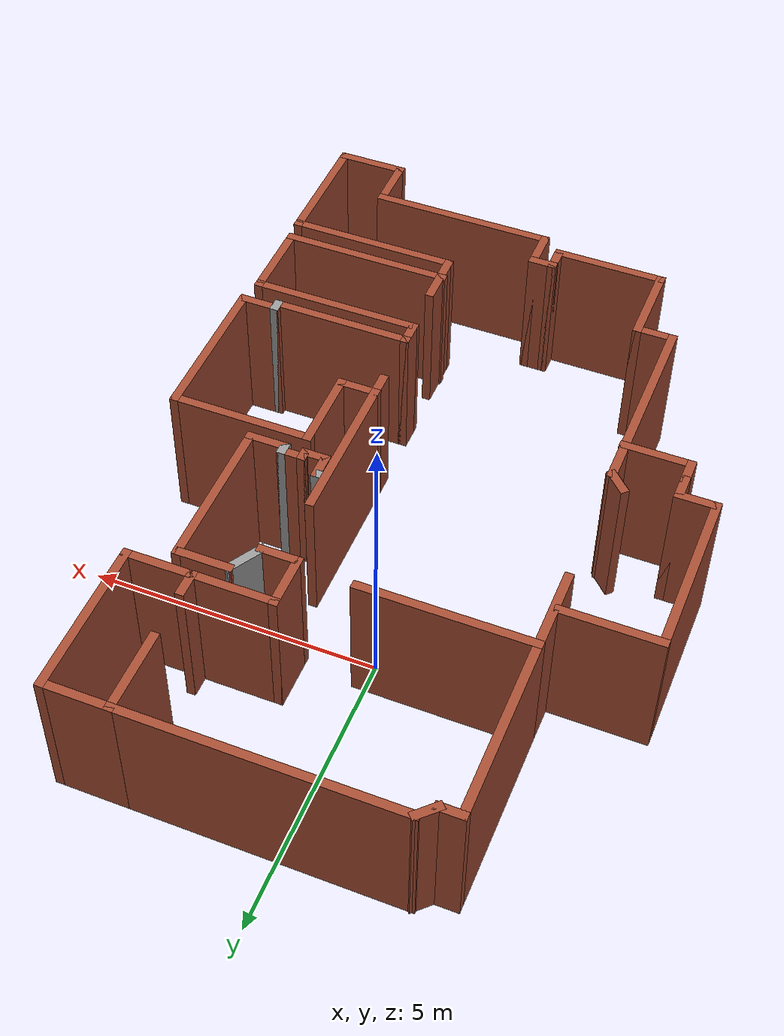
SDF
<?xml version='1.0'?>
<sdf version='1.6'>
  <model name='map_9'>
    <pose frame=''>0.012902 -2.60359 0 0 -0 0</pose>
    <link name='Wall_0'>
      <collision name='Wall_0_Collision'>
        <geometry>
          <box>
            <size>3.5 0.15 2.5</size>
          </box>
        </geometry>
        <pose frame=''>0 0 1.25 0 -0 0</pose>
      </collision>
      <visual name='Wall_0_Visual'>
        <pose frame=''>0 0 1.25 0 -0 0</pose>
        <geometry>
          <box>
            <size>3.5 0.15 2.5</size>
          </box>
        </geometry>
        <material>
          <script>
            <uri>file://media/materials/scripts/gazebo.material</uri>
            <name>Gazebo/Bricks</name>
          </script>
          <ambient>1 1 1 1</ambient>
        </material>
        <meta>
          <layer>0</layer>
        </meta>
      </visual>
      <pose frame=''>-2.69238 -2.26079 0 0 -0 -1.5708</pose>
    </link>
    <link name='Wall_1'>
      <collision name='Wall_1_Collision'>
        <geometry>
          <box>
            <size>0.75 0.15 2.5</size>
          </box>
        </geometry>
        <pose frame=''>0 0 1.25 0 -0 0</pose>
      </collision>
      <visual name='Wall_1_Visual'>
        <pose frame=''>0 0 1.25 0 -0 0</pose>
        <geometry>
          <box>
            <size>0.75 0.15 2.5</size>
          </box>
        </geometry>
        <material>
          <script>
            <uri>file://media/materials/scripts/gazebo.material</uri>
            <name>Gazebo/Bricks</name>
          </script>
          <ambient>1 1 1 1</ambient>
        </material>
        <meta>
          <layer>0</layer>
        </meta>
      </visual>
      <pose frame=''>-2.39238 -3.93579 0 0 -0 0</pose>
    </link>
    <link name='Wall_10'>
      <collision name='Wall_10_Collision'>
        <geometry>
          <box>
            <size>1.25 0.15 2.5</size>
          </box>
        </geometry>
        <pose frame=''>0 0 1.25 0 -0 0</pose>
      </collision>
      <visual name='Wall_10_Visual'>
        <pose frame=''>0 0 1.25 0 -0 0</pose>
        <geometry>
          <box>
            <size>1.25 0.15 2.5</size>
          </box>
        </geometry>
        <material>
          <script>
            <uri>file://media/materials/scripts/gazebo.material</uri>
            <name>Gazebo/Bricks</name>
          </script>
          <ambient>1 1 1 1</ambient>
        </material>
        <meta>
          <layer>0</layer>
        </meta>
      </visual>
      <pose frame=''>3.75761 -6.38579 0 0 -0 0</pose>
    </link>
    <link name='Wall_11'>
      <collision name='Wall_11_Collision'>
        <geometry>
          <box>
            <size>2.25 0.15 2.5</size>
          </box>
        </geometry>
        <pose frame=''>0 0 1.25 0 -0 0</pose>
      </collision>
      <visual name='Wall_11_Visual'>
        <pose frame=''>0 0 1.25 0 -0 0</pose>
        <geometry>
          <box>
            <size>2.25 0.15 2.5</size>
          </box>
        </geometry>
        <material>
          <script>
            <uri>file://media/materials/scripts/gazebo.material</uri>
            <name>Gazebo/Bricks</name>
          </script>
          <ambient>1 1 1 1</ambient>
        </material>
        <meta>
          <layer>0</layer>
        </meta>
      </visual>
      <pose frame=''>4.30762 -5.33579 0 0 -0 1.5708</pose>
    </link>
    <link name='Wall_12'>
      <collision name='Wall_12_Collision'>
        <geometry>
          <box>
            <size>3 0.15 2.5</size>
          </box>
        </geometry>
        <pose frame=''>0 0 1.25 0 -0 0</pose>
      </collision>
      <visual name='Wall_12_Visual'>
        <pose frame=''>0 0 1.25 0 -0 0</pose>
        <geometry>
          <box>
            <size>3 0.15 2.5</size>
          </box>
        </geometry>
        <material>
          <script>
            <uri>file://media/materials/scripts/gazebo.material</uri>
            <name>Gazebo/Bricks</name>
          </script>
          <ambient>1 1 1 1</ambient>
        </material>
        <meta>
          <layer>0</layer>
        </meta>
      </visual>
      <pose frame=''>2.88261 -4.28579 0 0 -0 3.14159</pose>
    </link>
    <link name='Wall_13'>
      <collision name='Wall_13_Collision'>
        <geometry>
          <box>
            <size>1 0.15 2.5</size>
          </box>
        </geometry>
        <pose frame=''>0 0 1.25 0 -0 0</pose>
      </collision>
      <visual name='Wall_13_Visual'>
        <pose frame=''>0 0 1.25 0 -0 0</pose>
        <geometry>
          <box>
            <size>1 0.15 2.5</size>
          </box>
        </geometry>
        <material>
          <script>
            <uri>file://media/materials/scripts/gazebo.material</uri>
            <name>Gazebo/Bricks</name>
          </script>
          <ambient>1 1 1 1</ambient>
        </material>
        <meta>
          <layer>0</layer>
        </meta>
      </visual>
      <pose frame=''>1.45762 -3.86079 0 0 -0 1.5708</pose>
    </link>
    <link name='Wall_15'>
      <collision name='Wall_15_Collision'>
        <geometry>
          <box>
            <size>3 0.15 2.5</size>
          </box>
        </geometry>
        <pose frame=''>0 0 1.25 0 -0 0</pose>
      </collision>
      <visual name='Wall_15_Visual'>
        <pose frame=''>0 0 1.25 0 -0 0</pose>
        <geometry>
          <box>
            <size>3 0.15 2.5</size>
          </box>
        </geometry>
        <material>
          <script>
            <uri>file://media/materials/scripts/gazebo.material</uri>
            <name>Gazebo/Bricks</name>
          </script>
          <ambient>1 1 1 1</ambient>
        </material>
        <meta>
          <layer>0</layer>
        </meta>
      </visual>
      <pose frame=''>2.85259 -3.89428 0 0 -0 0</pose>
    </link>
    <link name='Wall_16'>
      <collision name='Wall_16_Collision'>
        <geometry>
          <box>
            <size>1.5 0.15 2.5</size>
          </box>
        </geometry>
        <pose frame=''>0 0 1.25 0 -0 0</pose>
      </collision>
      <visual name='Wall_16_Visual'>
        <pose frame=''>0 0 1.25 0 -0 0</pose>
        <geometry>
          <box>
            <size>1.5 0.15 2.5</size>
          </box>
        </geometry>
        <material>
          <script>
            <uri>file://media/materials/scripts/gazebo.material</uri>
            <name>Gazebo/Bricks</name>
          </script>
          <ambient>1 1 1 1</ambient>
        </material>
        <meta>
          <layer>0</layer>
        </meta>
      </visual>
      <pose frame=''>4.2776 -3.21928 0 0 -0 1.5708</pose>
    </link>
    <link name='Wall_17'>
      <collision name='Wall_17_Collision'>
        <geometry>
          <box>
            <size>3 0.15 2.5</size>
          </box>
        </geometry>
        <pose frame=''>0 0 1.25 0 -0 0</pose>
      </collision>
      <visual name='Wall_17_Visual'>
        <pose frame=''>0 0 1.25 0 -0 0</pose>
        <geometry>
          <box>
            <size>3 0.15 2.5</size>
          </box>
        </geometry>
        <material>
          <script>
            <uri>file://media/materials/scripts/gazebo.material</uri>
            <name>Gazebo/Bricks</name>
          </script>
          <ambient>1 1 1 1</ambient>
        </material>
        <meta>
          <layer>0</layer>
        </meta>
      </visual>
      <pose frame=''>2.85259 -2.54428 0 0 -0 3.14159</pose>
    </link>
    <link name='Wall_18'>
      <collision name='Wall_18_Collision'>
        <geometry>
          <box>
            <size>0.5 0.15 2.5</size>
          </box>
        </geometry>
        <pose frame=''>0 0 1.25 0 -0 0</pose>
      </collision>
      <visual name='Wall_18_Visual'>
        <pose frame=''>0 0 1.25 0 -0 0</pose>
        <geometry>
          <box>
            <size>0.5 0.15 2.5</size>
          </box>
        </geometry>
        <material>
          <script>
            <uri>file://media/materials/scripts/gazebo.material</uri>
            <name>Gazebo/Bricks</name>
          </script>
          <ambient>1 1 1 1</ambient>
        </material>
        <meta>
          <layer>0</layer>
        </meta>
      </visual>
      <pose frame=''>1.42759 -2.36928 0 0 -0 1.5708</pose>
    </link>
    <link name='Wall_19'>
      <collision name='Wall_19_Collision'>
        <geometry>
          <box>
            <size>2.5 0.15 2.5</size>
          </box>
        </geometry>
        <pose frame=''>0 0 1.25 0 -0 0</pose>
      </collision>
      <visual name='Wall_19_Visual'>
        <pose frame=''>0 0 1.25 0 -0 0</pose>
        <geometry>
          <box>
            <size>2.5 0.15 2.5</size>
          </box>
        </geometry>
        <material>
          <script>
            <uri>file://media/materials/scripts/gazebo.material</uri>
            <name>Gazebo/Bricks</name>
          </script>
          <ambient>1 1 1 1</ambient>
        </material>
        <meta>
          <layer>0</layer>
        </meta>
      </visual>
      <pose frame=''>2.60259 -2.19428 0 0 -0 0</pose>
    </link>
    <link name='Wall_2'>
      <collision name='Wall_2_Collision'>
        <geometry>
          <box>
            <size>1.5 0.15 2.5</size>
          </box>
        </geometry>
        <pose frame=''>0 0 1.25 0 -0 0</pose>
      </collision>
      <visual name='Wall_2_Visual'>
        <pose frame=''>0 0 1.25 0 -0 0</pose>
        <geometry>
          <box>
            <size>1.5 0.15 2.5</size>
          </box>
        </geometry>
        <material>
          <script>
            <uri>file://media/materials/scripts/gazebo.material</uri>
            <name>Gazebo/Bricks</name>
          </script>
          <ambient>1 1 1 1</ambient>
        </material>
        <meta>
          <layer>0</layer>
        </meta>
      </visual>
      <pose frame=''>-2.09239 -4.61079 0 0 -0 -1.5708</pose>
    </link>
    <link name='Wall_20'>
      <collision name='Wall_20_Collision'>
        <geometry>
          <box>
            <size>0.25 0.15 2.5</size>
          </box>
        </geometry>
        <pose frame=''>0 0 1.25 0 -0 0</pose>
      </collision>
      <visual name='Wall_20_Visual'>
        <pose frame=''>0 0 1.25 0 -0 0</pose>
        <geometry>
          <box>
            <size>0.25 0.15 2.5</size>
          </box>
        </geometry>
        <material>
          <script>
            <uri>file://media/materials/scripts/gazebo.material</uri>
            <name>Gazebo/Grey</name>
          </script>
          <ambient>1 1 1 1</ambient>
        </material>
        <meta>
          <layer>0</layer>
        </meta>
      </visual>
      <pose frame=''>3.7776 -2.14428 0 0 -0 1.5708</pose>
    </link>
    <link name='Wall_21'>
      <collision name='Wall_21_Collision'>
        <geometry>
          <box>
            <size>0.75 0.15 2.5</size>
          </box>
        </geometry>
        <pose frame=''>0 0 1.25 0 -0 0</pose>
      </collision>
      <visual name='Wall_21_Visual'>
        <pose frame=''>0 0 1.25 0 -0 0</pose>
        <geometry>
          <box>
            <size>0.75 0.15 2.5</size>
          </box>
        </geometry>
        <material>
          <script>
            <uri>file://media/materials/scripts/gazebo.material</uri>
            <name>Gazebo/Bricks</name>
          </script>
          <ambient>1 1 1 1</ambient>
        </material>
        <meta>
          <layer>0</layer>
        </meta>
      </visual>
      <pose frame=''>4.07759 -2.09428 0 0 -0 0</pose>
    </link>
    <link name='Wall_22'>
      <collision name='Wall_22_Collision'>
        <geometry>
          <box>
            <size>2.75 0.15 2.5</size>
          </box>
        </geometry>
        <pose frame=''>0 0 1.25 0 -0 0</pose>
      </collision>
      <visual name='Wall_22_Visual'>
        <pose frame=''>0 0 1.25 0 -0 0</pose>
        <geometry>
          <box>
            <size>2.75 0.15 2.5</size>
          </box>
        </geometry>
        <material>
          <script>
            <uri>file://media/materials/scripts/gazebo.material</uri>
            <name>Gazebo/Bricks</name>
          </script>
          <ambient>1 1 1 1</ambient>
        </material>
        <meta>
          <layer>0</layer>
        </meta>
      </visual>
      <pose frame=''>4.3776 -0.794283 0 0 -0 1.5708</pose>
    </link>
    <link name='Wall_23'>
      <collision name='Wall_23_Collision'>
        <geometry>
          <box>
            <size>2.5 0.15 2.5</size>
          </box>
        </geometry>
        <pose frame=''>0 0 1.25 0 -0 0</pose>
      </collision>
      <visual name='Wall_23_Visual'>
        <pose frame=''>0 0 1.25 0 -0 0</pose>
        <geometry>
          <box>
            <size>2.5 0.15 2.5</size>
          </box>
        </geometry>
        <material>
          <script>
            <uri>file://media/materials/scripts/gazebo.material</uri>
            <name>Gazebo/Bricks</name>
          </script>
          <ambient>1 1 1 1</ambient>
        </material>
        <meta>
          <layer>0</layer>
        </meta>
      </visual>
      <pose frame=''>3.2026 0.505717 0 0 -0 3.14159</pose>
    </link>
    <link name='Wall_24'>
      <collision name='Wall_24_Collision'>
        <geometry>
          <box>
            <size>1.5 0.15 2.5</size>
          </box>
        </geometry>
        <pose frame=''>0 0 1.25 0 -0 0</pose>
      </collision>
      <visual name='Wall_24_Visual'>
        <pose frame=''>0 0 1.25 0 -0 0</pose>
        <geometry>
          <box>
            <size>1.5 0.15 2.5</size>
          </box>
        </geometry>
        <material>
          <script>
            <uri>file://media/materials/scripts/gazebo.material</uri>
            <name>Gazebo/Bricks</name>
          </script>
          <ambient>1 1 1 1</ambient>
        </material>
        <meta>
          <layer>0</layer>
        </meta>
      </visual>
      <pose frame=''>2.0276 -0.169283 0 0 -0 -1.5708</pose>
    </link>
    <link name='Wall_25'>
      <collision name='Wall_25_Collision'>
        <geometry>
          <box>
            <size>0.75 0.15 2.5</size>
          </box>
        </geometry>
        <pose frame=''>0 0 1.25 0 -0 0</pose>
      </collision>
      <visual name='Wall_25_Visual'>
        <pose frame=''>0 0 1.25 0 -0 0</pose>
        <geometry>
          <box>
            <size>0.75 0.15 2.5</size>
          </box>
        </geometry>
        <material>
          <script>
            <uri>file://media/materials/scripts/gazebo.material</uri>
            <name>Gazebo/Bricks</name>
          </script>
          <ambient>1 1 1 1</ambient>
        </material>
        <meta>
          <layer>0</layer>
        </meta>
      </visual>
      <pose frame=''>1.72759 -0.844283 0 0 -0 3.14159</pose>
    </link>
    <link name='Wall_26'>
      <collision name='Wall_26_Collision'>
        <geometry>
          <box>
            <size>0.5 0.15 2.5</size>
          </box>
        </geometry>
        <pose frame=''>0 0 1.25 0 -0 0</pose>
      </collision>
      <visual name='Wall_26_Visual'>
        <pose frame=''>0 0 1.25 0 -0 0</pose>
        <geometry>
          <box>
            <size>0.5 0.15 2.5</size>
          </box>
        </geometry>
        <material>
          <script>
            <uri>file://media/materials/scripts/gazebo.material</uri>
            <name>Gazebo/Bricks</name>
          </script>
          <ambient>1 1 1 1</ambient>
        </material>
        <meta>
          <layer>0</layer>
        </meta>
      </visual>
      <pose frame=''>1.42759 -1.01928 0 0 -0 -1.5708</pose>
    </link>
    <link name='Wall_28'>
      <collision name='Wall_28_Collision'>
        <geometry>
          <box>
            <size>2.75 0.15 2.5</size>
          </box>
        </geometry>
        <pose frame=''>0 0 1.25 0 -0 0</pose>
      </collision>
      <visual name='Wall_28_Visual'>
        <pose frame=''>0 0 1.25 0 -0 0</pose>
        <geometry>
          <box>
            <size>2.75 0.15 2.5</size>
          </box>
        </geometry>
        <material>
          <script>
            <uri>file://media/materials/scripts/gazebo.material</uri>
            <name>Gazebo/Bricks</name>
          </script>
          <ambient>1 1 1 1</ambient>
        </material>
        <meta>
          <layer>0</layer>
        </meta>
      </visual>
      <pose frame=''>1.42759 0.455717 0 0 -0 1.5708</pose>
    </link>
    <link name='Wall_3'>
      <collision name='Wall_3_Collision'>
        <geometry>
          <box>
            <size>2 0.15 2.5</size>
          </box>
        </geometry>
        <pose frame=''>0 0 1.25 0 -0 0</pose>
      </collision>
      <visual name='Wall_3_Visual'>
        <pose frame=''>0 0 1.25 0 -0 0</pose>
        <geometry>
          <box>
            <size>2 0.15 2.5</size>
          </box>
        </geometry>
        <material>
          <script>
            <uri>file://media/materials/scripts/gazebo.material</uri>
            <name>Gazebo/Bricks</name>
          </script>
          <ambient>1 1 1 1</ambient>
        </material>
        <meta>
          <layer>0</layer>
        </meta>
      </visual>
      <pose frame=''>-1.16738 -5.28579 0 0 -0 0</pose>
    </link>
    <link name='Wall_30'>
      <collision name='Wall_30_Collision'>
        <geometry>
          <box>
            <size>0.25 0.15 2.5</size>
          </box>
        </geometry>
        <pose frame=''>0 0 1.25 0 -0 0</pose>
      </collision>
      <visual name='Wall_30_Visual'>
        <pose frame=''>0 0 1.25 0 -0 0</pose>
        <geometry>
          <box>
            <size>0.25 0.15 2.5</size>
          </box>
        </geometry>
        <material>
          <script>
            <uri>file://media/materials/scripts/gazebo.material</uri>
            <name>Gazebo/Grey</name>
          </script>
          <ambient>1 1 1 1</ambient>
        </material>
        <meta>
          <layer>0</layer>
        </meta>
      </visual>
      <pose frame=''>1.53794 1.17434 0 0 -0 0</pose>
    </link>
    <link name='Wall_31'>
      <collision name='Wall_31_Collision'>
        <geometry>
          <box>
            <size>0.5 0.15 2.5</size>
          </box>
        </geometry>
        <pose frame=''>0 0 1.25 0 -0 0</pose>
      </collision>
      <visual name='Wall_31_Visual'>
        <pose frame=''>0 0 1.25 0 -0 0</pose>
        <geometry>
          <box>
            <size>0.5 0.15 2.5</size>
          </box>
        </geometry>
        <material>
          <script>
            <uri>file://media/materials/scripts/gazebo.material</uri>
            <name>Gazebo/Bricks</name>
          </script>
          <ambient>1 1 1 1</ambient>
        </material>
        <meta>
          <layer>0</layer>
        </meta>
      </visual>
      <pose frame=''>1.58794 0.999337 0 0 -0 -1.5708</pose>
    </link>
    <link name='Wall_32'>
      <collision name='Wall_32_Collision'>
        <geometry>
          <box>
            <size>0.5 0.15 2.5</size>
          </box>
        </geometry>
        <pose frame=''>0 0 1.25 0 -0 0</pose>
      </collision>
      <visual name='Wall_32_Visual'>
        <pose frame=''>0 0 1.25 0 -0 0</pose>
        <geometry>
          <box>
            <size>0.5 0.15 2.5</size>
          </box>
        </geometry>
        <material>
          <script>
            <uri>file://media/materials/scripts/gazebo.material</uri>
            <name>Gazebo/Bricks</name>
          </script>
          <ambient>1 1 1 1</ambient>
        </material>
        <meta>
          <layer>0</layer>
        </meta>
      </visual>
      <pose frame=''>1.76294 0.824337 0 0 -0 0</pose>
    </link>
    <link name='Wall_33'>
      <collision name='Wall_33_Collision'>
        <geometry>
          <box>
            <size>0.25 0.15 2.5</size>
          </box>
        </geometry>
        <pose frame=''>0 0 1.25 0 -0 0</pose>
      </collision>
      <visual name='Wall_33_Visual'>
        <pose frame=''>0 0 1.25 0 -0 0</pose>
        <geometry>
          <box>
            <size>0.25 0.15 2.5</size>
          </box>
        </geometry>
        <material>
          <script>
            <uri>file://media/materials/scripts/gazebo.material</uri>
            <name>Gazebo/Bricks</name>
          </script>
          <ambient>1 1 1 1</ambient>
        </material>
        <meta>
          <layer>0</layer>
        </meta>
      </visual>
      <pose frame=''>1.93794 0.874337 0 0 -0 1.5708</pose>
    </link>
    <link name='Wall_34'>
      <collision name='Wall_34_Collision'>
        <geometry>
          <box>
            <size>0.5 0.15 2.5</size>
          </box>
        </geometry>
        <pose frame=''>0 0 1.25 0 -0 0</pose>
      </collision>
      <visual name='Wall_34_Visual'>
        <pose frame=''>0 0 1.25 0 -0 0</pose>
        <geometry>
          <box>
            <size>0.5 0.15 2.5</size>
          </box>
        </geometry>
        <material>
          <script>
            <uri>file://media/materials/scripts/gazebo.material</uri>
            <name>Gazebo/Bricks</name>
          </script>
          <ambient>1 1 1 1</ambient>
        </material>
        <meta>
          <layer>0</layer>
        </meta>
      </visual>
      <pose frame=''>2.11294 0.924337 0 0 -0 0</pose>
    </link>
    <link name='Wall_35'>
      <collision name='Wall_35_Collision'>
        <geometry>
          <box>
            <size>0.25 0.15 2.5</size>
          </box>
        </geometry>
        <pose frame=''>0 0 1.25 0 -0 0</pose>
      </collision>
      <visual name='Wall_35_Visual'>
        <pose frame=''>0 0 1.25 0 -0 0</pose>
        <geometry>
          <box>
            <size>0.25 0.15 2.5</size>
          </box>
        </geometry>
        <material>
          <script>
            <uri>file://media/materials/scripts/gazebo.material</uri>
            <name>Gazebo/Grey</name>
          </script>
          <ambient>1 1 1 1</ambient>
        </material>
        <meta>
          <layer>0</layer>
        </meta>
      </visual>
      <pose frame=''>2.28794 0.874337 0 0 -0 -1.5708</pose>
    </link>
    <link name='Wall_36'>
      <collision name='Wall_36_Collision'>
        <geometry>
          <box>
            <size>0.75 0.15 2.5</size>
          </box>
        </geometry>
        <pose frame=''>0 0 1.25 0 -0 0</pose>
      </collision>
      <visual name='Wall_36_Visual'>
        <pose frame=''>0 0 1.25 0 -0 0</pose>
        <geometry>
          <box>
            <size>0.75 0.15 2.5</size>
          </box>
        </geometry>
        <material>
          <script>
            <uri>file://media/materials/scripts/gazebo.material</uri>
            <name>Gazebo/Bricks</name>
          </script>
          <ambient>1 1 1 1</ambient>
        </material>
        <meta>
          <layer>0</layer>
        </meta>
      </visual>
      <pose frame=''>2.58794 0.824337 0 0 -0 0</pose>
    </link>
    <link name='Wall_37'>
      <collision name='Wall_37_Collision'>
        <geometry>
          <box>
            <size>2.75 0.15 2.5</size>
          </box>
        </geometry>
        <pose frame=''>0 0 1.25 0 -0 0</pose>
      </collision>
      <visual name='Wall_37_Visual'>
        <pose frame=''>0 0 1.25 0 -0 0</pose>
        <geometry>
          <box>
            <size>2.75 0.15 2.5</size>
          </box>
        </geometry>
        <material>
          <script>
            <uri>file://media/materials/scripts/gazebo.material</uri>
            <name>Gazebo/Bricks</name>
          </script>
          <ambient>1 1 1 1</ambient>
        </material>
        <meta>
          <layer>0</layer>
        </meta>
      </visual>
      <pose frame=''>2.88794 2.12434 0 0 -0 1.5708</pose>
    </link>
    <link name='Wall_38'>
      <collision name='Wall_38_Collision'>
        <geometry>
          <box>
            <size>1 0.15 2.5</size>
          </box>
        </geometry>
        <pose frame=''>0 0 1.25 0 -0 0</pose>
      </collision>
      <visual name='Wall_38_Visual'>
        <pose frame=''>0 0 1.25 0 -0 0</pose>
        <geometry>
          <box>
            <size>1 0.15 2.5</size>
          </box>
        </geometry>
        <material>
          <script>
            <uri>file://media/materials/scripts/gazebo.material</uri>
            <name>Gazebo/Bricks</name>
          </script>
          <ambient>1 1 1 1</ambient>
        </material>
        <meta>
          <layer>0</layer>
        </meta>
      </visual>
      <pose frame=''>2.46294 3.42434 0 0 -0 3.14159</pose>
    </link>
    <link name='Wall_39'>
      <collision name='Wall_39_Collision'>
        <geometry>
          <box>
            <size>0.75 0.15 2.5</size>
          </box>
        </geometry>
        <pose frame=''>0 0 1.25 0 -0 0</pose>
      </collision>
      <visual name='Wall_39_Visual'>
        <pose frame=''>0 0 1.25 0 -0 0</pose>
        <geometry>
          <box>
            <size>0.75 0.15 2.5</size>
          </box>
        </geometry>
        <material>
          <script>
            <uri>file://media/materials/scripts/gazebo.material</uri>
            <name>Gazebo/Grey</name>
          </script>
          <ambient>1 1 1 1</ambient>
        </material>
        <meta>
          <layer>0</layer>
        </meta>
      </visual>
      <pose frame=''>1.88794 3.16453 0 0 -0 -2.0944</pose>
    </link>
    <link name='Wall_40'>
      <collision name='Wall_40_Collision'>
        <geometry>
          <box>
            <size>0.75 0.15 2.5</size>
          </box>
        </geometry>
        <pose frame=''>0 0 1.25 0 -0 0</pose>
      </collision>
      <visual name='Wall_40_Visual'>
        <pose frame=''>0 0 1.25 0 -0 0</pose>
        <geometry>
          <box>
            <size>0.75 0.15 2.5</size>
          </box>
        </geometry>
        <material>
          <script>
            <uri>file://media/materials/scripts/gazebo.material</uri>
            <name>Gazebo/Bricks</name>
          </script>
          <ambient>1 1 1 1</ambient>
        </material>
        <meta>
          <layer>0</layer>
        </meta>
      </visual>
      <pose frame=''>1.43794 2.90472 0 0 -0 3.14159</pose>
    </link>
    <link name='Wall_42'>
      <collision name='Wall_42_Collision'>
        <geometry>
          <box>
            <size>1 0.15 2.5</size>
          </box>
        </geometry>
        <pose frame=''>0 0 1.25 0 -0 0</pose>
      </collision>
      <visual name='Wall_42_Visual'>
        <pose frame=''>0 0 1.25 0 -0 0</pose>
        <geometry>
          <box>
            <size>1 0.15 2.5</size>
          </box>
        </geometry>
        <material>
          <script>
            <uri>file://media/materials/scripts/gazebo.material</uri>
            <name>Gazebo/Bricks</name>
          </script>
          <ambient>1 1 1 1</ambient>
        </material>
        <meta>
          <layer>0</layer>
        </meta>
      </visual>
      <pose frame=''>1.13794 3.32972 0 0 -0 1.5708</pose>
    </link>
    <link name='Wall_43'>
      <collision name='Wall_43_Collision'>
        <geometry>
          <box>
            <size>1.5 0.15 2.5</size>
          </box>
        </geometry>
        <pose frame=''>0 0 1.25 0 -0 0</pose>
      </collision>
      <visual name='Wall_43_Visual'>
        <pose frame=''>0 0 1.25 0 -0 0</pose>
        <geometry>
          <box>
            <size>1.5 0.15 2.5</size>
          </box>
        </geometry>
        <material>
          <script>
            <uri>file://media/materials/scripts/gazebo.material</uri>
            <name>Gazebo/Bricks</name>
          </script>
          <ambient>1 1 1 1</ambient>
        </material>
        <meta>
          <layer>0</layer>
        </meta>
      </visual>
      <pose frame=''>1.81294 3.75472 0 0 -0 0</pose>
    </link>
    <link name='Wall_44'>
      <collision name='Wall_44_Collision'>
        <geometry>
          <box>
            <size>0.5 0.15 2.5</size>
          </box>
        </geometry>
        <pose frame=''>0 0 1.25 0 -0 0</pose>
      </collision>
      <visual name='Wall_44_Visual'>
        <pose frame=''>0 0 1.25 0 -0 0</pose>
        <geometry>
          <box>
            <size>0.5 0.15 2.5</size>
          </box>
        </geometry>
        <material>
          <script>
            <uri>file://media/materials/scripts/gazebo.material</uri>
            <name>Gazebo/Bricks</name>
          </script>
          <ambient>1 1 1 1</ambient>
        </material>
        <meta>
          <layer>0</layer>
        </meta>
      </visual>
      <pose frame=''>2.48794 3.92972 0 0 -0 1.5708</pose>
    </link>
    <link name='Wall_46'>
      <collision name='Wall_46_Collision'>
        <geometry>
          <box>
            <size>1.25 0.15 2.5</size>
          </box>
        </geometry>
        <pose frame=''>0 0 1.25 0 -0 0</pose>
      </collision>
      <visual name='Wall_46_Visual'>
        <pose frame=''>0 0 1.25 0 -0 0</pose>
        <geometry>
          <box>
            <size>1.25 0.15 2.5</size>
          </box>
        </geometry>
        <material>
          <script>
            <uri>file://media/materials/scripts/gazebo.material</uri>
            <name>Gazebo/Bricks</name>
          </script>
          <ambient>1 1 1 1</ambient>
        </material>
        <meta>
          <layer>0</layer>
        </meta>
      </visual>
      <pose frame=''>3.03794 3.75472 0 0 -0 0</pose>
    </link>
    <link name='Wall_47'>
      <collision name='Wall_47_Collision'>
        <geometry>
          <box>
            <size>2.75 0.15 2.5</size>
          </box>
        </geometry>
        <pose frame=''>0 0 1.25 0 -0 0</pose>
      </collision>
      <visual name='Wall_47_Visual'>
        <pose frame=''>0 0 1.25 0 -0 0</pose>
        <geometry>
          <box>
            <size>2.75 0.15 2.5</size>
          </box>
        </geometry>
        <material>
          <script>
            <uri>file://media/materials/scripts/gazebo.material</uri>
            <name>Gazebo/Bricks</name>
          </script>
          <ambient>1 1 1 1</ambient>
        </material>
        <meta>
          <layer>0</layer>
        </meta>
      </visual>
      <pose frame=''>3.58794 5.05472 0 0 -0 1.5708</pose>
    </link>
    <link name='Wall_48'>
      <collision name='Wall_48_Collision'>
        <geometry>
          <box>
            <size>1.25 0.15 2.5</size>
          </box>
        </geometry>
        <pose frame=''>0 0 1.25 0 -0 0</pose>
      </collision>
      <visual name='Wall_48_Visual'>
        <pose frame=''>0 0 1.25 0 -0 0</pose>
        <geometry>
          <box>
            <size>1.25 0.15 2.5</size>
          </box>
        </geometry>
        <material>
          <script>
            <uri>file://media/materials/scripts/gazebo.material</uri>
            <name>Gazebo/Bricks</name>
          </script>
          <ambient>1 1 1 1</ambient>
        </material>
        <meta>
          <layer>0</layer>
        </meta>
      </visual>
      <pose frame=''>3.03794 6.35472 0 0 -0 3.14159</pose>
    </link>
    <link name='Wall_49'>
      <collision name='Wall_49_Collision'>
        <geometry>
          <box>
            <size>1.5 0.15 2.5</size>
          </box>
        </geometry>
        <pose frame=''>0 0 1.25 0 -0 0</pose>
      </collision>
      <visual name='Wall_49_Visual'>
        <pose frame=''>0 0 1.25 0 -0 0</pose>
        <geometry>
          <box>
            <size>1.5 0.15 2.5</size>
          </box>
        </geometry>
        <material>
          <script>
            <uri>file://media/materials/scripts/gazebo.material</uri>
            <name>Gazebo/Bricks</name>
          </script>
          <ambient>1 1 1 1</ambient>
        </material>
        <meta>
          <layer>0</layer>
        </meta>
      </visual>
      <pose frame=''>2.48794 5.67972 0 0 -0 -1.5708</pose>
    </link>
    <link name='Wall_5'>
      <collision name='Wall_5_Collision'>
        <geometry>
          <box>
            <size>0.5 0.15 2.5</size>
          </box>
        </geometry>
        <pose frame=''>0 0 1.25 0 -0 0</pose>
      </collision>
      <visual name='Wall_5_Visual'>
        <pose frame=''>0 0 1.25 0 -0 0</pose>
        <geometry>
          <box>
            <size>0.5 0.15 2.5</size>
          </box>
        </geometry>
        <material>
          <script>
            <uri>file://media/materials/scripts/gazebo.material</uri>
            <name>Gazebo/Bricks</name>
          </script>
          <ambient>1 1 1 1</ambient>
        </material>
        <meta>
          <layer>0</layer>
        </meta>
      </visual>
      <pose frame=''>-0.242385 -5.11079 0 0 -0 1.5708</pose>
    </link>
    <link name='Wall_51'>
      <collision name='Wall_51_Collision'>
        <geometry>
          <box>
            <size>4.75 0.15 2.5</size>
          </box>
        </geometry>
        <pose frame=''>0 0 1.25 0 -0 0</pose>
      </collision>
      <visual name='Wall_51_Visual'>
        <pose frame=''>0 0 1.25 0 -0 0</pose>
        <geometry>
          <box>
            <size>4.75 0.15 2.5</size>
          </box>
        </geometry>
        <material>
          <script>
            <uri>file://media/materials/scripts/gazebo.material</uri>
            <name>Gazebo/Bricks</name>
          </script>
          <ambient>1 1 1 1</ambient>
        </material>
        <meta>
          <layer>0</layer>
        </meta>
      </visual>
      <pose frame=''>0.187936 6.35472 0 0 -0 3.14159</pose>
    </link>
    <link name='Wall_52'>
      <collision name='Wall_52_Collision'>
        <geometry>
          <box>
            <size>0.5 0.15 2.5</size>
          </box>
        </geometry>
        <pose frame=''>0 0 1.25 0 -0 0</pose>
      </collision>
      <visual name='Wall_52_Visual'>
        <pose frame=''>0 0 1.25 0 -0 0</pose>
        <geometry>
          <box>
            <size>0.5 0.15 2.5</size>
          </box>
        </geometry>
        <material>
          <script>
            <uri>file://media/materials/scripts/gazebo.material</uri>
            <name>Gazebo/Bricks</name>
          </script>
          <ambient>1 1 1 1</ambient>
        </material>
        <meta>
          <layer>0</layer>
        </meta>
      </visual>
      <pose frame=''>-2.23581 6.23098 0 0 -0 -2.35619</pose>
    </link>
    <link name='Wall_53'>
      <collision name='Wall_53_Collision'>
        <geometry>
          <box>
            <size>0.5 0.15 2.5</size>
          </box>
        </geometry>
        <pose frame=''>0 0 1.25 0 -0 0</pose>
      </collision>
      <visual name='Wall_53_Visual'>
        <pose frame=''>0 0 1.25 0 -0 0</pose>
        <geometry>
          <box>
            <size>0.5 0.15 2.5</size>
          </box>
        </geometry>
        <material>
          <script>
            <uri>file://media/materials/scripts/gazebo.material</uri>
            <name>Gazebo/Bricks</name>
          </script>
          <ambient>1 1 1 1</ambient>
        </material>
        <meta>
          <layer>0</layer>
        </meta>
      </visual>
      <pose frame=''>-2.53455 6.10723 0 0 -0 3.14159</pose>
    </link>
    <link name='Wall_54'>
      <collision name='Wall_54_Collision'>
        <geometry>
          <box>
            <size>3.25 0.15 2.5</size>
          </box>
        </geometry>
        <pose frame=''>0 0 1.25 0 -0 0</pose>
      </collision>
      <visual name='Wall_54_Visual'>
        <pose frame=''>0 0 1.25 0 -0 0</pose>
        <geometry>
          <box>
            <size>3.25 0.15 2.5</size>
          </box>
        </geometry>
        <material>
          <script>
            <uri>file://media/materials/scripts/gazebo.material</uri>
            <name>Gazebo/Bricks</name>
          </script>
          <ambient>1 1 1 1</ambient>
        </material>
        <meta>
          <layer>0</layer>
        </meta>
      </visual>
      <pose frame=''>-2.70955 4.55723 0 0 -0 -1.5708</pose>
    </link>
    <link name='Wall_55'>
      <collision name='Wall_55_Collision'>
        <geometry>
          <box>
            <size>3 0.15 2.5</size>
          </box>
        </geometry>
        <pose frame=''>0 0 1.25 0 -0 0</pose>
      </collision>
      <visual name='Wall_55_Visual'>
        <pose frame=''>0 0 1.25 0 -0 0</pose>
        <geometry>
          <box>
            <size>3 0.15 2.5</size>
          </box>
        </geometry>
        <material>
          <script>
            <uri>file://media/materials/scripts/gazebo.material</uri>
            <name>Gazebo/Bricks</name>
          </script>
          <ambient>1 1 1 1</ambient>
        </material>
        <meta>
          <layer>0</layer>
        </meta>
      </visual>
      <pose frame=''>-1.28455 3.00723 0 0 -0 0</pose>
    </link>
    <link name='Wall_57'>
      <collision name='Wall_57_Collision'>
        <geometry>
          <box>
            <size>1.5 0.15 2.5</size>
          </box>
        </geometry>
        <pose frame=''>0 0 1.25 0 -0 0</pose>
      </collision>
      <visual name='Wall_57_Visual'>
        <pose frame=''>0 0 1.25 0 -0 0</pose>
        <geometry>
          <box>
            <size>1.5 0.15 2.5</size>
          </box>
        </geometry>
        <material>
          <script>
            <uri>file://media/materials/scripts/gazebo.material</uri>
            <name>Gazebo/Bricks</name>
          </script>
          <ambient>1 1 1 1</ambient>
        </material>
        <meta>
          <layer>0</layer>
        </meta>
      </visual>
      <pose frame=''>-2.70955 2.33223 0 0 -0 -1.5708</pose>
    </link>
    <link name='Wall_59'>
      <collision name='Wall_59_Collision'>
        <geometry>
          <box>
            <size>1.75 0.15 2.5</size>
          </box>
        </geometry>
        <pose frame=''>0 0 1.25 0 -0 0</pose>
      </collision>
      <visual name='Wall_59_Visual'>
        <pose frame=''>0 0 1.25 0 -0 0</pose>
        <geometry>
          <box>
            <size>1.75 0.15 2.5</size>
          </box>
        </geometry>
        <material>
          <script>
            <uri>file://media/materials/scripts/gazebo.material</uri>
            <name>Gazebo/Bricks</name>
          </script>
          <ambient>1 1 1 1</ambient>
        </material>
        <meta>
          <layer>0</layer>
        </meta>
      </visual>
      <pose frame=''>-3.5776 2.29194 0 0 -0 3.14159</pose>
    </link>
    <link name='Wall_6'>
      <collision name='Wall_6_Collision'>
        <geometry>
          <box>
            <size>0.5 0.15 2.5</size>
          </box>
        </geometry>
        <pose frame=''>0 0 1.25 0 -0 0</pose>
      </collision>
      <visual name='Wall_6_Visual'>
        <pose frame=''>0 0 1.25 0 -0 0</pose>
        <geometry>
          <box>
            <size>0.5 0.15 2.5</size>
          </box>
        </geometry>
        <material>
          <script>
            <uri>file://media/materials/scripts/gazebo.material</uri>
            <name>Gazebo/Bricks</name>
          </script>
          <ambient>1 1 1 1</ambient>
        </material>
        <meta>
          <layer>0</layer>
        </meta>
      </visual>
      <pose frame=''>-0.067385 -4.93579 0 0 -0 0</pose>
    </link>
    <link name='Wall_60'>
      <collision name='Wall_60_Collision'>
        <geometry>
          <box>
            <size>3 0.15 2.5</size>
          </box>
        </geometry>
        <pose frame=''>0 0 1.25 0 -0 0</pose>
      </collision>
      <visual name='Wall_60_Visual'>
        <pose frame=''>0 0 1.25 0 -0 0</pose>
        <geometry>
          <box>
            <size>3 0.15 2.5</size>
          </box>
        </geometry>
        <material>
          <script>
            <uri>file://media/materials/scripts/gazebo.material</uri>
            <name>Gazebo/Bricks</name>
          </script>
          <ambient>1 1 1 1</ambient>
        </material>
        <meta>
          <layer>0</layer>
        </meta>
      </visual>
      <pose frame=''>-4.3776 0.86694 0 0 -0 -1.5708</pose>
    </link>
    <link name='Wall_61'>
      <collision name='Wall_61_Collision'>
        <geometry>
          <box>
            <size>0.75 0.15 2.5</size>
          </box>
        </geometry>
        <pose frame=''>0 0 1.25 0 -0 0</pose>
      </collision>
      <visual name='Wall_61_Visual'>
        <pose frame=''>0 0 1.25 0 -0 0</pose>
        <geometry>
          <box>
            <size>0.75 0.15 2.5</size>
          </box>
        </geometry>
        <material>
          <script>
            <uri>file://media/materials/scripts/gazebo.material</uri>
            <name>Gazebo/Bricks</name>
          </script>
          <ambient>1 1 1 1</ambient>
        </material>
        <meta>
          <layer>0</layer>
        </meta>
      </visual>
      <pose frame=''>-4.07759 -0.55806 0 0 -0 0</pose>
    </link>
    <link name='Wall_62'>
      <collision name='Wall_62_Collision'>
        <geometry>
          <box>
            <size>0.5 0.15 2.5</size>
          </box>
        </geometry>
        <pose frame=''>0 0 1.25 0 -0 0</pose>
      </collision>
      <visual name='Wall_62_Visual'>
        <pose frame=''>0 0 1.25 0 -0 0</pose>
        <geometry>
          <box>
            <size>0.5 0.15 2.5</size>
          </box>
        </geometry>
        <material>
          <script>
            <uri>file://media/materials/scripts/gazebo.material</uri>
            <name>Gazebo/Bricks</name>
          </script>
          <ambient>1 1 1 1</ambient>
        </material>
        <meta>
          <layer>0</layer>
        </meta>
      </visual>
      <pose frame=''>-3.7776 -0.73306 0 0 -0 -1.5708</pose>
    </link>
    <link name='Wall_63'>
      <collision name='Wall_63_Collision'>
        <geometry>
          <box>
            <size>0.5 0.15 2.5</size>
          </box>
        </geometry>
        <pose frame=''>0 0 1.25 0 -0 0</pose>
      </collision>
      <visual name='Wall_63_Visual'>
        <pose frame=''>0 0 1.25 0 -0 0</pose>
        <geometry>
          <box>
            <size>0.5 0.15 2.5</size>
          </box>
        </geometry>
        <material>
          <script>
            <uri>file://media/materials/scripts/gazebo.material</uri>
            <name>Gazebo/Bricks</name>
          </script>
          <ambient>1 1 1 1</ambient>
        </material>
        <meta>
          <layer>0</layer>
        </meta>
      </visual>
      <pose frame=''>-3.7776 -1.08306 0 0 -0 -1.5708</pose>
    </link>
    <link name='Wall_64'>
      <collision name='Wall_64_Collision'>
        <geometry>
          <box>
            <size>1.25 0.15 2.5</size>
          </box>
        </geometry>
        <pose frame=''>0 0 1.25 0 -0 0</pose>
      </collision>
      <visual name='Wall_64_Visual'>
        <pose frame=''>0 0 1.25 0 -0 0</pose>
        <geometry>
          <box>
            <size>1.25 0.15 2.5</size>
          </box>
        </geometry>
        <material>
          <script>
            <uri>file://media/materials/scripts/gazebo.material</uri>
            <name>Gazebo/Bricks</name>
          </script>
          <ambient>1 1 1 1</ambient>
        </material>
        <meta>
          <layer>0</layer>
        </meta>
      </visual>
      <pose frame=''>-3.22759 -1.25806 0 0 -0 0</pose>
    </link>
    <link name='Wall_66'>
      <collision name='Wall_66_Collision'>
        <geometry>
          <box>
            <size>0.5 0.15 2.5</size>
          </box>
        </geometry>
        <pose frame=''>0 0 1.25 0 -0 0</pose>
      </collision>
      <visual name='Wall_66_Visual'>
        <pose frame=''>0 0 1.25 0 -0 0</pose>
        <geometry>
          <box>
            <size>0.5 0.15 2.5</size>
          </box>
        </geometry>
        <material>
          <script>
            <uri>file://media/materials/scripts/gazebo.material</uri>
            <name>Gazebo/Bricks</name>
          </script>
          <ambient>1 1 1 1</ambient>
        </material>
        <meta>
          <layer>0</layer>
        </meta>
      </visual>
      <pose frame=''>-2.81613 -0.462044 0 0 -0 2.35619</pose>
    </link>
    <link name='Wall_7'>
      <collision name='Wall_7_Collision'>
        <geometry>
          <box>
            <size>0.75 0.15 2.5</size>
          </box>
        </geometry>
        <pose frame=''>0 0 1.25 0 -0 0</pose>
      </collision>
      <visual name='Wall_7_Visual'>
        <pose frame=''>0 0 1.25 0 -0 0</pose>
        <geometry>
          <box>
            <size>0.75 0.15 2.5</size>
          </box>
        </geometry>
        <material>
          <script>
            <uri>file://media/materials/scripts/gazebo.material</uri>
            <name>Gazebo/Bricks</name>
          </script>
          <ambient>1 1 1 1</ambient>
        </material>
        <meta>
          <layer>0</layer>
        </meta>
      </visual>
      <pose frame=''>0.107615 -5.23579 0 0 -0 -1.5708</pose>
    </link>
    <link name='Wall_8'>
      <collision name='Wall_8_Collision'>
        <geometry>
          <box>
            <size>3.25 0.15 2.5</size>
          </box>
        </geometry>
        <pose frame=''>0 0 1.25 0 -0 0</pose>
      </collision>
      <visual name='Wall_8_Visual'>
        <pose frame=''>0 0 1.25 0 -0 0</pose>
        <geometry>
          <box>
            <size>3.25 0.15 2.5</size>
          </box>
        </geometry>
        <material>
          <script>
            <uri>file://media/materials/scripts/gazebo.material</uri>
            <name>Gazebo/Bricks</name>
          </script>
          <ambient>1 1 1 1</ambient>
        </material>
        <meta>
          <layer>0</layer>
        </meta>
      </visual>
      <pose frame=''>1.65762 -5.53579 0 0 -0 0</pose>
    </link>
    <link name='Wall_9'>
      <collision name='Wall_9_Collision'>
        <geometry>
          <box>
            <size>1 0.15 2.5</size>
          </box>
        </geometry>
        <pose frame=''>0 0 1.25 0 -0 0</pose>
      </collision>
      <visual name='Wall_9_Visual'>
        <pose frame=''>0 0 1.25 0 -0 0</pose>
        <geometry>
          <box>
            <size>1 0.15 2.5</size>
          </box>
        </geometry>
        <material>
          <script>
            <uri>file://media/materials/scripts/gazebo.material</uri>
            <name>Gazebo/Bricks</name>
          </script>
          <ambient>1 1 1 1</ambient>
        </material>
        <meta>
          <layer>0</layer>
        </meta>
      </visual>
      <pose frame=''>3.20762 -5.96079 0 0 -0 -1.5708</pose>
    </link>
    <static>1</static>
  </model>
</sdf>
